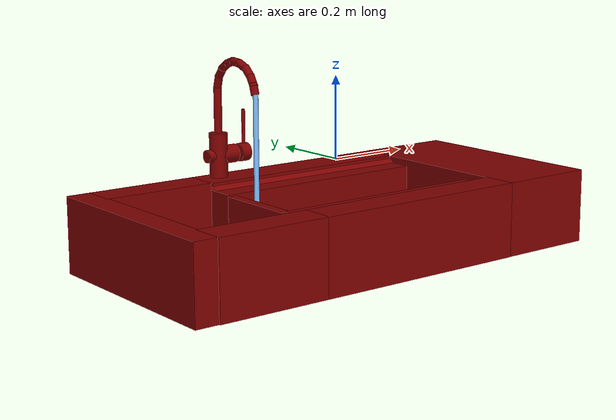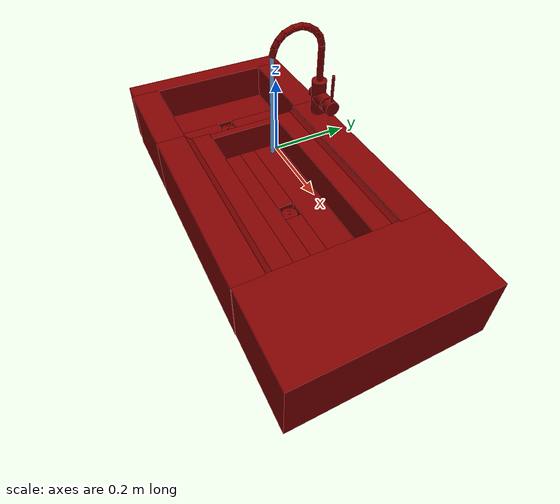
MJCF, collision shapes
<mujoco model="model">
  <compiler angle="radian"/>
  <asset>
    <mesh file="visuals/handle.obj" name="handle_vis"/>
    <mesh file="visuals/Body001.obj" name="Body001_vis"/>
    <mesh file="visuals/Funnel001.obj" name="Funnel001_vis"/>
    <mesh file="visuals/Funnel002.obj" name="Funnel002_vis"/>
    <mesh file="visuals/spout.obj" name="spout_vis"/>
    <texture file="visuals/T_BC001.png" name="Body001_material" type="2d"/>
    <material name="Body001_material" rgba="1 1 1 1.0" texture="Body001_material" shininess="0.4472135901451111" specular="0.3103448502657381"/>
    <texture file="visuals/T_BC001.png" name="handle_material" type="2d"/>
    <material name="handle_material" rgba="1 1 1 1.0" texture="handle_material" shininess="0.4472135901451111" specular="0.3103448502657381"/>
    <texture file="visuals/T_BC001.png" name="Funnel001_material" type="2d"/>
    <material name="Funnel001_material" rgba="1 1 1 1.0" texture="Funnel001_material" shininess="0.4472135901451111" specular="0.3103448502657381"/>
    <texture file="visuals/T_BC001.png" name="Funnel002_material" type="2d"/>
    <material name="Funnel002_material" rgba="1 1 1 1.0" texture="Funnel002_material" shininess="0.4472135901451111" specular="0.3103448502657381"/>
    <texture file="visuals/T_BC001.png" name="spout_material" type="2d"/>
    <material name="spout_material" rgba="1 1 1 1.0" texture="spout_material" shininess="0.4472135901451111" specular="0.3103448502657381"/>
  </asset>
  <default>
    <default class="visual">
      <geom conaffinity="0" contype="0" group="1" type="mesh"/>
    </default>
    <default class="collision">
      <geom group="0" rgba="0.5 0 0 0.5"/>
    </default>
    <default class="spawn">
      <geom group="0" rgba="1 1 1 0.5" contype="0" conaffinity="0"/>
      <site group="0" rgba="1 1 1 0.5"/>
    </default>
    <default class="region">
      <geom group="1" conaffinity="0" contype="0" rgba="0 1 0 0"/>
    </default>
  </default>
  <worldbody>
    <body>
      <body name="object">
        <geom mesh="Body001_vis" type="mesh" solimp="0.998 0.998 0.001" solref="0.001 1" density="100" friction="0.95 0.3 0.1" class="visual" material="Body001_material"/>
        <geom class="collision" type="box" pos="-0.5428750514984131 0.0001773326366674155 -0.14872851967811584" size="0.031514715403318405 0.2649506628513336 0.09164928644895554" quat="1.0 0.0 0.0 0.0"/>
        <geom class="collision" type="box" pos="0.44864580035209656 -0.0003435809339862317 -0.14872851967811584" size="0.12640996277332306 0.26659396290779114 0.09164929389953613" quat="1.0 0.0 0.0 0.0"/>
        <geom class="collision" type="box" pos="0.044925495982170105 0.22023646533489227 -0.14872851967811584" size="0.2815152406692505 0.044808123260736465 0.09164956957101822" quat="1.0 0.0 0.0 0.0"/>
        <geom class="collision" type="box" pos="-0.3737524151802063 0.22274136543273926 -0.14872851967811584" size="0.1422635167837143 0.04207679256796837 0.09164932370185852" quat="1.0 0.0 0.0 0.0"/>
        <geom class="collision" type="box" pos="-0.3737524151802063 -0.2259167730808258 -0.14872851967811584" size="0.1422635167837143 0.04207679256796837 0.09164934605360031" quat="1.0 0.0 0.0 0.0"/>
        <geom class="collision" type="box" pos="0.044587209820747375 -0.22612981498241425 -0.14872851967811584" size="0.2803805470466614 0.04206457734107971 0.09164935350418091" quat="1.0 0.0 0.0 0.0"/>
        <geom class="collision" type="box" pos="-0.22452354431152344 3.945129719795659e-05 -0.15915919840335846" size="0.012242678552865982 0.11001994460821152 0.08071688562631607" quat="1.0 0.0 0.0 0.0"/>
        <geom class="collision" type="box" pos="-0.11120790243148804 -0.006130542140454054 -0.219966322183609" size="0.43617770075798035 0.19349324703216553 0.020411718636751175" quat="1.0 0.0 0.0 0.0"/>
        <geom class="collision" type="box" pos="0.0449255034327507 0.14416059851646423 -0.12857580184936523" size="0.2815152108669281 0.03699116408824921 0.05423280969262123" quat="1.0 0.0 0.0 0.0"/>
        <geom class="collision" type="box" pos="0.044925507158041 -0.14806045591831207 -0.12857580184936523" size="0.2815152406692505 0.039287544786930084 0.054232899099588394" quat="1.0 0.0 0.0 0.0"/>
        <geom class="collision" type="box" pos="-0.4575776159763336 -0.0020226584747433662 -0.1838884949684143" size="0.05950541794300079 0.18450546264648438 0.016952428966760635" quat="1.0 0.0 0.0 0.0"/>
        <geom class="collision" type="box" pos="-0.29101109504699707 -0.0020226642955094576 -0.1838884949684143" size="0.0595054067671299 0.1845054030418396 0.016952423378825188" quat="1.0 0.0 0.0 0.0"/>
        <geom class="collision" type="box" pos="-0.3747326731681824 0.10482809692621231 -0.1838884949684143" size="0.026141105219721794 0.08105432987213135 0.016952376812696457" quat="1.0 0.0 0.0 0.0"/>
        <geom class="collision" type="box" pos="-0.3747326731681824 -0.10662375390529633 -0.1838884949684143" size="0.026141110807657242 0.08105434477329254 0.016952378675341606" quat="1.0 0.0 0.0 0.0"/>
        <geom class="collision" type="box" pos="0.051224738359451294 0.07271897047758102 -0.1838884949684143" size="0.27167677879333496 0.04756312444806099 0.0169523898512125" quat="1.0 0.0 0.0 0.0"/>
        <geom class="collision" type="box" pos="0.05122475326061249 -0.07064678519964218 -0.1838884949684143" size="0.27167677879333496 0.047563131898641586 0.0169523898512125" quat="1.0 0.0 0.0 0.0"/>
        <geom class="collision" type="box" pos="0.2147681564092636 0.0010211719200015068 -0.1838884949684143" size="0.1094478890299797 0.025082280859351158 0.0169523898512125" quat="1.0 0.0 0.0 0.0"/>
        <geom class="collision" type="box" pos="-0.08051450550556183 0.0010211574845016003 -0.1838884949684143" size="0.13767467439174652 0.025082295760512352 0.0169523898512125" quat="1.0 0.0 0.0 0.0"/>
        <geom class="collision" type="cylinder" pos="-0.17936426401138306 0.23260730504989624 -0.005379015579819679" size="0.022757161408662796 0.05625209957361221" quat="1.0 0.0 0.0 0.0"/>
        <geom class="collision" type="cylinder" pos="-0.1532038450241089 0.23260730504989624 -0.004038915503770113" size="0.022515717893838882 0.021582122892141342" quat="0.70710688829422 -4.7503021960437763e-08 0.7071066498756409 4.750300774958305e-08"/>
        <geom class="collision" type="cylinder" pos="-0.20414118468761444 0.23260730504989624 -0.004038915503770113" size="0.015823092311620712 0.01029928307980299" quat="0.70710688829422 -4.7503021960437763e-08 0.7071066498756409 4.750300774958305e-08"/>
        <geom class="collision" type="box" pos="0.04547499120235443 -0.17451250553131104 -0.08727122843265533" size="0.025082286447286606 0.2791004776954651 0.0169523973017931" quat="0.666886568069458 -0.2350795418024063 -0.23507942259311676 -0.6668864488601685"/>
        <geom class="collision" type="box" pos="0.044201962649822235 0.17448177933692932 -0.08703859895467758" size="0.025082286447286606 0.2803735136985779 0.0169523973017931" quat="0.6681766510009766 0.23138728737831116 -0.231387197971344 0.668176531791687"/>
        <body name="handle">
          <joint axis="1.0 0.0 0.0" pos="-0.11293861269950867 0.23273900151252747 -0.004106719046831131" limited="true" name="handle_joint_hinge_0" type="hinge" range="-0.7853981633974483 0.7853981633974483" damping="1" frictionloss="1" armature=".01" stiffness="0.05"/>
          <joint axis="0.0 1.0 0.0" pos="-0.11293861269950867 0.23273900151252747 -0.004106719046831131" limited="true" name="handle_joint_hinge_1" type="hinge" range="0.0 0.17453292519943295" damping="1" frictionloss="1" armature=".01" stiffness="0.05"/>
          <geom mesh="handle_vis" type="mesh" solimp="0.998 0.998 0.001" solref="0.001 1" density="100" friction="0.95 0.3 0.1" class="visual" material="handle_material"/>
          <geom class="collision" type="cylinder" pos="-0.10863903909921646 0.23260730504989624 -0.004038915038108826" size="0.022515717893838882 0.01301011722534895" quat="0.70710688829422 -4.750302551315144e-08 0.7071066498756409 4.750301130229673e-08"/>
          <geom class="collision" type="cylinder" pos="-0.10523325949907303 0.23260730504989624 0.05954035371541977" size="0.004497365560382605 0.04224235191941261" quat="1.9470718370939721e-07 -6.717942824252532e-08 1.0 1.3435884227419592e-07"/>
        </body>
        <body name="Funnel001">
          <joint axis="0.0 0.0 1.0" pos="-0.37397459149360657 -0.00012635180610232055 -0.17729416489601135" limited="true" name="Funnel001_joint" range="0.0 0.1" type="slide" damping="0" frictionloss="0" armature=".01" stiffness="0"/>
          <geom mesh="Funnel001_vis" type="mesh" solimp="0.998 0.998 0.001" solref="0.001 1" density="1000" friction="0.95 0.3 0.1" class="visual" material="Funnel001_material"/>
          <geom class="collision" type="cylinder" pos="-0.3735586702823639 0.0 -0.1781751811504364" size="0.020482143387198448 0.0020798149053007364" quat="1.0 0.0 0.0 0.0"/>
          <geom class="collision" type="cylinder" pos="-0.373952716588974 -0.0001483493542764336 -0.17316262423992157" size="0.004651112947613001 0.002743741497397423" quat="1.0 0.0 0.0 0.0"/>
        </body>
        <body name="Funnel002">
          <joint axis="0.0 0.0 1.0" pos="0.08137697726488113 -0.0001336914428975433 -0.17426878213882446" limited="true" name="Funnel002_joint" range="0.0 0.1" type="slide" damping="0" frictionloss="0" armature=".01" stiffness="0"/>
          <geom mesh="Funnel002_vis" type="mesh" solimp="0.998 0.998 0.001" solref="0.001 1" density="1000" friction="0.95 0.3 0.1" class="visual" material="Funnel002_material"/>
          <geom class="collision" type="cylinder" pos="0.08194727450609207 0.0 -0.17547285556793213" size="0.02064596861600876 0.0020964499562978745" quat="1.0 0.0 0.0 0.0"/>
          <geom class="collision" type="cylinder" pos="0.08175467699766159 0.0 -0.17058800160884857" size="0.00486303074285388 0.003147911513224244" quat="1.0 0.0 0.0 0.0"/>
        </body>
        <body name="spout">
          <joint axis="0.0 0.0 1.0" pos="-0.17921459674835205 0.23191876709461212 0.14382076263427734" limited="true" name="spout_joint" range="-0.7853981633974483 0.7853981633974483" type="hinge" damping="1" frictionloss="1" armature=".01" stiffness="0.05"/>
          <site type="cylinder" rgba="0.5 0.75 1 1" size="0.006393761839717627 0.16631513833999634" pos="-0.17886139452457428 0.07469233125448227 -0.0020990287885069847" name="water"/>
          <geom mesh="spout_vis" type="mesh" solimp="0.998 0.998 0.001" solref="0.001 1" density="100" friction="0.95 0.3 0.1" class="visual" material="spout_material"/>
          <geom class="collision" type="cylinder" pos="-0.1792595535516739 0.23246406018733978 0.10873384773731232" size="0.009934265166521072 0.056256648153066635" quat="1.0 0.0 0.0 0.0"/>
          <geom class="collision" type="cylinder" pos="-0.1792595535516739 0.22869440913200378 0.17583346366882324" size="0.009934265166521072 0.014502867124974728" quat="0.9899696707725525 0.14128001034259796 -3.13704640803265e-17 -4.065071242085344e-24"/>
          <geom class="collision" type="cylinder" pos="-0.1792595535516739 0.21768707036972046 0.19830051064491272" size="0.009934265166521072 0.014502864331007004" quat="0.9445487856864929 0.3283711075782776 -7.29130262335687e-17 5.9858797042606585e-24"/>
          <geom class="collision" type="cylinder" pos="-0.1792595535516739 0.1989896446466446 0.21624398231506348" size="0.009934265166521072 0.014502864331007004" quat="0.876102864742279 0.4821242392063141 -1.070530796019024e-16 9.944945395624213e-24"/>
          <geom class="collision" type="cylinder" pos="-0.1792595535516739 0.17561787366867065 0.22770369052886963" size="0.009934265166521072 0.014502865262329578" quat="0.8088570237159729 0.5880053639411926 -1.3056340549523157e-16 1.820550552008966e-24"/>
          <geom class="collision" type="cylinder" pos="-0.1792595535516739 0.1511905938386917 0.23011627793312073" size="0.009934265166521072 0.01450286339968443" quat="0.6837475895881653 0.7297186255455017 -1.6203009715057759e-16 -3.6817580484399365e-23"/>
          <geom class="collision" type="cylinder" pos="-0.1792595535516739 0.12510468065738678 0.2242356538772583" size="0.009934265166521072 0.014502864331007004" quat="0.5643213987350464 0.8255552053451538 -1.8330994706576976e-16 -6.399909879377924e-23"/>
          <geom class="collision" type="cylinder" pos="-0.1792595535516739 0.10354234278202057 0.2115696668624878" size="0.009934265166521072 0.01450286339968443" quat="0.3973284065723419 0.9176765084266663 -2.0376498541368327e-16 -1.1974745720364122e-22"/>
          <geom class="collision" type="cylinder" pos="-0.1792595535516739 0.08755906671285629 0.19241991639137268" size="0.009934265166521072 0.01450286339968443" quat="0.2732285261154175 0.9619491696357727 -2.1359563656462687e-16 6.021812634037838e-23"/>
          <geom class="collision" type="cylinder" pos="-0.1792595535516739 0.08001978695392609 0.17492878437042236" size="0.009934265166521072 0.014502864331007004" quat="0.15607759356498718 0.9877448081970215 -2.1932345864241766e-16 -3.2741813866161035e-23"/>
        </body>
        <geom class="region" name="reg_main" type="box" pos="1.4901161193847656e-08 0.0 -0.149386927485466" size="0.5738086104393005 0.26478761434555054 0.09093023836612701"/>
        <geom class="region" name="reg_basin_left" type="box" pos="-0.3745627701282501 0.0001705959439277649 -0.11519133672118187" size="0.13766559958457947 0.1834295317530632 0.0527106411755085"/>
        <geom class="region" name="reg_basin_right" type="box" pos="0.055090539157390594 -0.0003193020820617676 -0.12611344456672668" size="0.26782361418008804 0.10865435004234314 0.04279966652393341"/>
      </body>
    </body>
  </worldbody>
  <actuator>
    <motor name="handle_joint_hinge_0_actuator" joint="handle_joint_hinge_0" gear="10"/>
    <motor name="handle_joint_hinge_1_actuator" joint="handle_joint_hinge_1" gear="10"/>
    <motor name="Funnel001_joint_actuator" joint="Funnel001_joint" gear="10"/>
    <motor name="Funnel002_joint_actuator" joint="Funnel002_joint" gear="10"/>
    <motor name="spout_joint_actuator" joint="spout_joint" gear="10"/>
  </actuator>
</mujoco>
